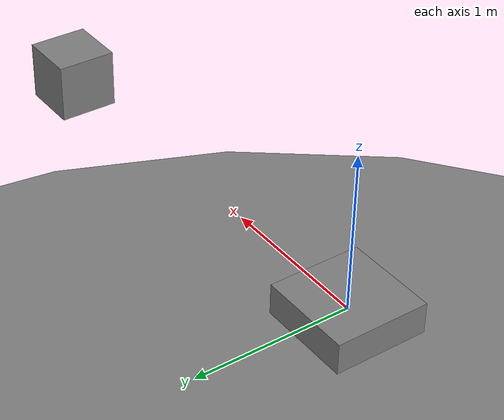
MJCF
<mujoco model="skyhook_bailiff_root_actuation_regression">
  <worldbody>
    <geom name="sumo_ring" type="cylinder" size="7.5 1" pos="0 0 -5" />
    <body name="red_root">
      <freejoint name="red_root_free" />
      <geom name="red_chassis" type="box" size=".3 .3 .1" mass="100" />
    </body>
    <body name="blue_root" pos="3 0 0">
      <freejoint />
      <geom name="blue_block" type="box" size=".2 .2 .2" mass="36" />
    </body>
  </worldbody>
  <actuator>
    <motor name="red_thrust_1" joint="red_root_free" gear="0 4863.012787 7868.519977 0 0 0" ctrllimited="true" ctrlrange="-1 1" />
    <motor name="red_thrust_2" joint="red_root_free" gear="0 -4863.012787 7868.519977 0 0 0" ctrllimited="true" ctrlrange="-1 1" />
    <motor name="red_thrust_3" joint="red_root_free" gear="4863.012787 7868.519977 0 0 0 0" ctrllimited="true" ctrlrange="-1 1" />
    <motor name="red_thrust_4" joint="red_root_free" gear="-4863.012787 7868.519977 0 0 0 0" ctrllimited="true" ctrlrange="-1 1" />
    <motor name="red_thrust_5" joint="red_root_free" gear="7868.519977 0 4863.012787 0 0 0" ctrllimited="true" ctrlrange="-1 1" />
    <motor name="red_thrust_6" joint="red_root_free" gear="7868.519977 0 -4863.012787 0 0 0" ctrllimited="true" ctrlrange="-1 1" />
    <motor name="red_roll_wrench" joint="red_root_free" gear="0 0 0 2200 0 0" ctrllimited="true" ctrlrange="-1 1" />
    <motor name="red_pitch_wrench" joint="red_root_free" gear="0 0 0 0 2200 0" ctrllimited="true" ctrlrange="-1 1" />
    <motor name="red_yaw_wrench" joint="red_root_free" gear="0 0 0 0 0 2200" ctrllimited="true" ctrlrange="-1 1" />
  </actuator>
</mujoco>
